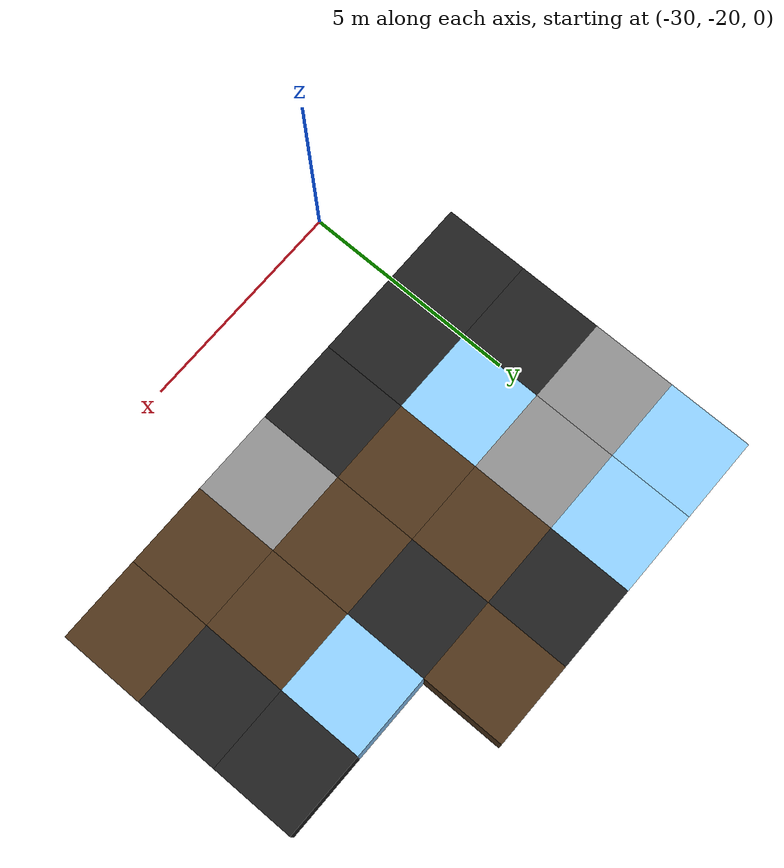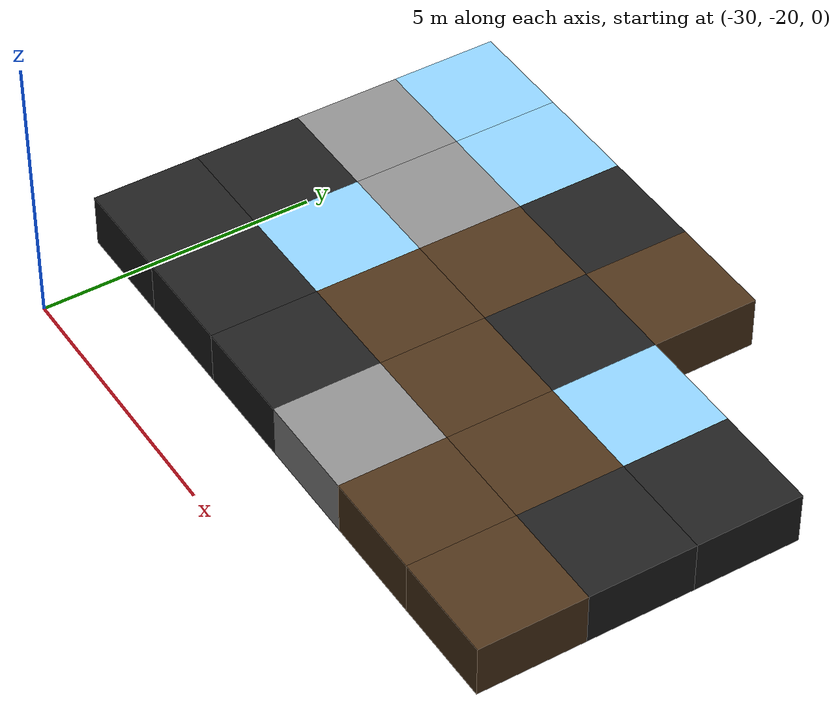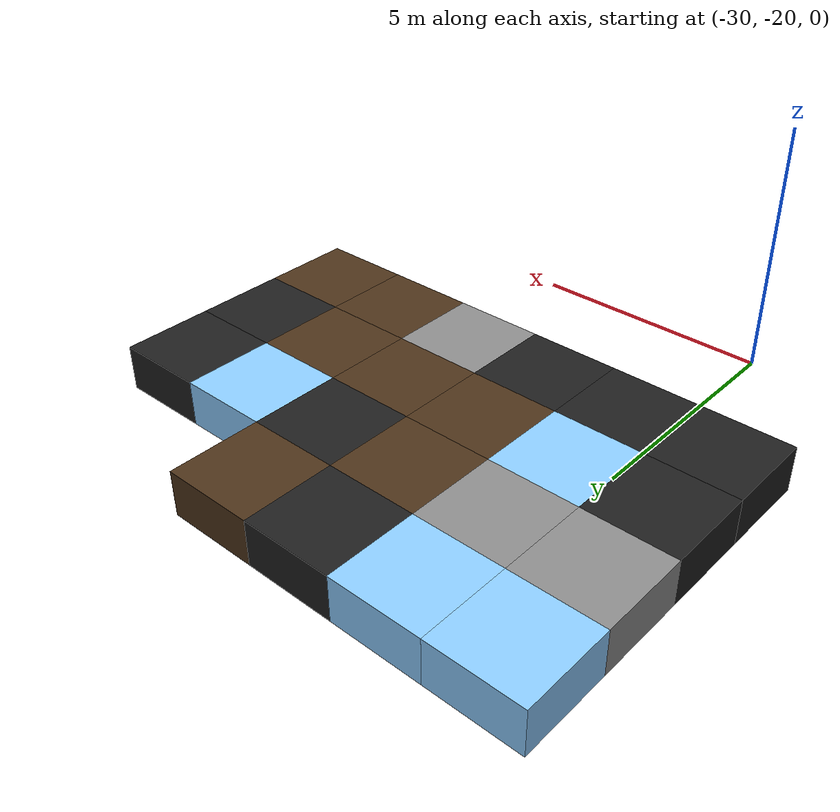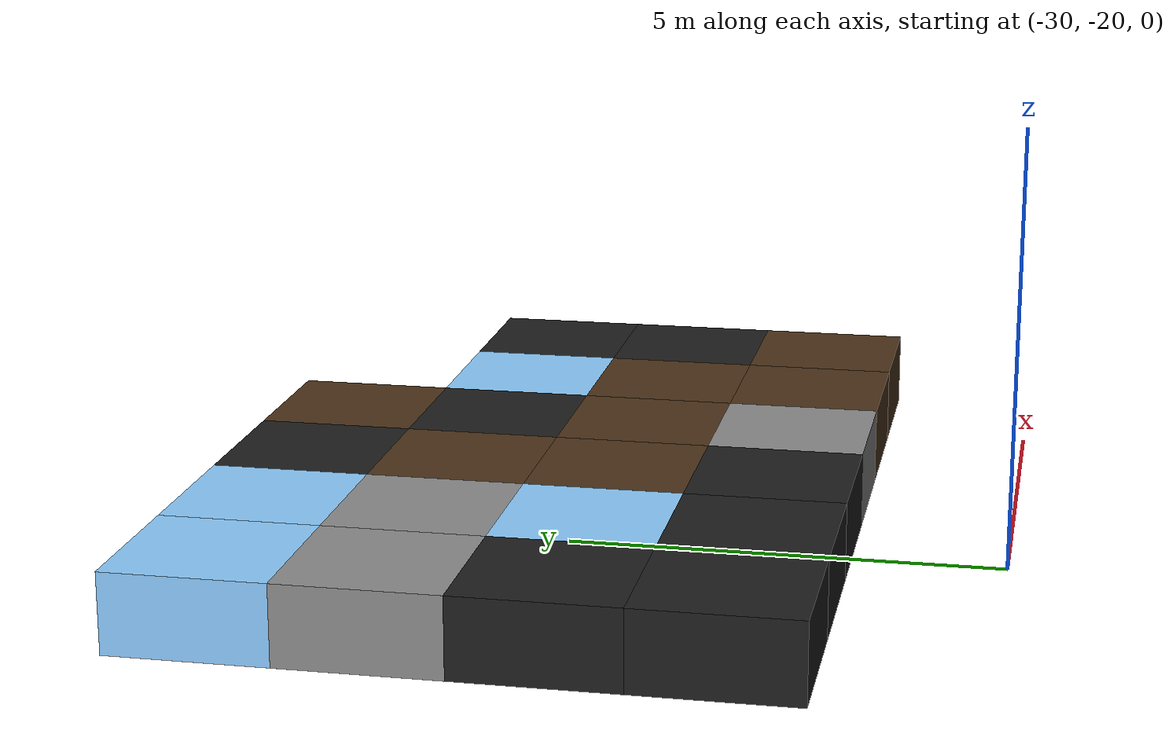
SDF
<sdf version="1.5">
 <world name="squares_example">
  <model name="tile_0_7">
   <static>true</static>
   <pose>-31.000 -17.000 -0.500 0 0 0</pose>
   <link name="link">
    <collision name="col">
     <geometry><box><size>2.0 2.0 1.0</size></box></geometry>
     <surface>
      <friction>
       <ode><mu>0.4</mu><mu2>0.15</mu2><fdir1>1 0 0</fdir1><slip1>0.0</slip1><slip2>0.0</slip2></ode>
       <torsional>
        <coefficient>0.03</coefficient>
        <use_patch_radius>false</use_patch_radius>
        <surface_radius>0.12</surface_radius>
        <ode><slip>0.0</slip></ode>
       </torsional>
      </friction>
      <bounce><restitution_coefficient>0.0</restitution_coefficient><threshold>0.1</threshold></bounce>
      <contact>
       <ode><kp>1000000000.0</kp><kd>1000000.0</kd><max_vel>0.01</max_vel><min_depth>0.0</min_depth></ode>
      </contact>
     </surface>
    </collision>
    <visual name="visual">
     <geometry><box><size>2.0 2.0 1.0</size></box></geometry>
     <material>
      <diffuse>0.12 0.12 0.12 1</diffuse>
      <ambient>0 0 0 0</ambient>
      <specular>0 0 0 1</specular>
      <emissive>0 0 0 1</emissive>
     </material>
    </visual>
   </link>
  </model>
  <model name="tile_1_7">
   <static>true</static>
   <pose>-29.000 -17.000 -0.500 0 0 0</pose>
   <link name="link">
    <collision name="col">
     <geometry><box><size>2.0 2.0 1.0</size></box></geometry>
     <surface>
      <friction>
       <ode><mu>0.4</mu><mu2>0.15</mu2><fdir1>1 0 0</fdir1><slip1>0.0</slip1><slip2>0.0</slip2></ode>
       <torsional>
        <coefficient>0.03</coefficient>
        <use_patch_radius>false</use_patch_radius>
        <surface_radius>0.12</surface_radius>
        <ode><slip>0.0</slip></ode>
       </torsional>
      </friction>
      <bounce><restitution_coefficient>0.0</restitution_coefficient><threshold>0.1</threshold></bounce>
      <contact>
       <ode><kp>1000000000.0</kp><kd>1000000.0</kd><max_vel>0.01</max_vel><min_depth>0.0</min_depth></ode>
      </contact>
     </surface>
    </collision>
    <visual name="visual">
     <geometry><box><size>2.0 2.0 1.0</size></box></geometry>
     <material>
      <diffuse>0.12 0.12 0.12 1</diffuse>
      <ambient>0 0 0 0</ambient>
      <specular>0 0 0 1</specular>
      <emissive>0 0 0 1</emissive>
     </material>
    </visual>
   </link>
  </model>
  <model name="tile_2_7">
   <static>true</static>
   <pose>-27.000 -17.000 -0.500 0 0 0</pose>
   <link name="link">
    <collision name="col">
     <geometry><box><size>2.0 2.0 1.0</size></box></geometry>
     <surface>
      <friction>
       <ode><mu>0.4</mu><mu2>0.15</mu2><fdir1>1 0 0</fdir1><slip1>0.0</slip1><slip2>0.0</slip2></ode>
       <torsional>
        <coefficient>0.03</coefficient>
        <use_patch_radius>false</use_patch_radius>
        <surface_radius>0.12</surface_radius>
        <ode><slip>0.0</slip></ode>
       </torsional>
      </friction>
      <bounce><restitution_coefficient>0.0</restitution_coefficient><threshold>0.1</threshold></bounce>
      <contact>
       <ode><kp>1000000000.0</kp><kd>1000000.0</kd><max_vel>0.01</max_vel><min_depth>0.0</min_depth></ode>
      </contact>
     </surface>
    </collision>
    <visual name="visual">
     <geometry><box><size>2.0 2.0 1.0</size></box></geometry>
     <material>
      <diffuse>0.12 0.12 0.12 1</diffuse>
      <ambient>0 0 0 0</ambient>
      <specular>0 0 0 1</specular>
      <emissive>0 0 0 1</emissive>
     </material>
    </visual>
   </link>
  </model>
  <model name="tile_3_7">
   <static>true</static>
   <pose>-25.000 -17.000 -0.500 0 0 0</pose>
   <link name="link">
    <collision name="col">
     <geometry><box><size>2.0 2.0 1.0</size></box></geometry>
     <surface>
      <friction>
       <ode><mu>0.8</mu><mu2>0.3</mu2><fdir1>1 0 0</fdir1><slip1>0.0</slip1><slip2>0.0</slip2></ode>
       <torsional>
        <coefficient>0.03</coefficient>
        <use_patch_radius>false</use_patch_radius>
        <surface_radius>0.12</surface_radius>
        <ode><slip>0.0</slip></ode>
       </torsional>
      </friction>
      <bounce><restitution_coefficient>0.0</restitution_coefficient><threshold>0.1</threshold></bounce>
      <contact>
       <ode><kp>10000000000.0</kp><kd>10000000.0</kd><max_vel>0.01</max_vel><min_depth>0.0</min_depth></ode>
      </contact>
     </surface>
    </collision>
    <visual name="visual">
     <geometry><box><size>2.0 2.0 1.0</size></box></geometry>
     <material>
      <diffuse>0.55 0.55 0.55 1</diffuse>
      <ambient>0 0 0 0</ambient>
      <specular>0 0 0 1</specular>
      <emissive>0 0 0 1</emissive>
     </material>
    </visual>
   </link>
  </model>
  <model name="tile_4_7">
   <static>true</static>
   <pose>-23.000 -17.000 -0.500 0 0 0</pose>
   <link name="link">
    <collision name="col">
     <geometry><box><size>2.0 2.0 1.0</size></box></geometry>
     <surface>
      <friction>
       <ode><mu>0.6</mu><mu2>0.4</mu2><fdir1>1 0 0</fdir1><slip1>0.08</slip1><slip2>0.08</slip2></ode>
       <torsional>
        <coefficient>0.03</coefficient>
        <use_patch_radius>false</use_patch_radius>
        <surface_radius>0.12</surface_radius>
        <ode><slip>0.0</slip></ode>
       </torsional>
      </friction>
      <bounce><restitution_coefficient>0.0</restitution_coefficient><threshold>0.1</threshold></bounce>
      <contact>
       <ode><kp>1000000.0</kp><kd>10000.0</kd><max_vel>0.01</max_vel><min_depth>0.0</min_depth></ode>
      </contact>
     </surface>
    </collision>
    <visual name="visual">
     <geometry><box><size>2.0 2.0 1.0</size></box></geometry>
     <material>
      <diffuse>0.30 0.20 0.10 1</diffuse>
      <ambient>0 0 0 0</ambient>
      <specular>0 0 0 1</specular>
      <emissive>0 0 0 1</emissive>
     </material>
    </visual>
   </link>
  </model>
  <model name="tile_5_7">
   <static>true</static>
   <pose>-21.000 -17.000 -0.500 0 0 0</pose>
   <link name="link">
    <collision name="col">
     <geometry><box><size>2.0 2.0 1.0</size></box></geometry>
     <surface>
      <friction>
       <ode><mu>0.6</mu><mu2>0.4</mu2><fdir1>1 0 0</fdir1><slip1>0.08</slip1><slip2>0.08</slip2></ode>
       <torsional>
        <coefficient>0.03</coefficient>
        <use_patch_radius>false</use_patch_radius>
        <surface_radius>0.12</surface_radius>
        <ode><slip>0.0</slip></ode>
       </torsional>
      </friction>
      <bounce><restitution_coefficient>0.0</restitution_coefficient><threshold>0.1</threshold></bounce>
      <contact>
       <ode><kp>1000000.0</kp><kd>10000.0</kd><max_vel>0.01</max_vel><min_depth>0.0</min_depth></ode>
      </contact>
     </surface>
    </collision>
    <visual name="visual">
     <geometry><box><size>2.0 2.0 1.0</size></box></geometry>
     <material>
      <diffuse>0.30 0.20 0.10 1</diffuse>
      <ambient>0 0 0 0</ambient>
      <specular>0 0 0 1</specular>
      <emissive>0 0 0 1</emissive>
     </material>
    </visual>
   </link>
  </model>
  <model name="tile_0_8">
   <static>true</static>
   <pose>-31.000 -15.000 -0.500 0 0 0</pose>
   <link name="link">
    <collision name="col">
     <geometry><box><size>2.0 2.0 1.0</size></box></geometry>
     <surface>
      <friction>
       <ode><mu>0.4</mu><mu2>0.15</mu2><fdir1>1 0 0</fdir1><slip1>0.0</slip1><slip2>0.0</slip2></ode>
       <torsional>
        <coefficient>0.03</coefficient>
        <use_patch_radius>false</use_patch_radius>
        <surface_radius>0.12</surface_radius>
        <ode><slip>0.0</slip></ode>
       </torsional>
      </friction>
      <bounce><restitution_coefficient>0.0</restitution_coefficient><threshold>0.1</threshold></bounce>
      <contact>
       <ode><kp>1000000000.0</kp><kd>1000000.0</kd><max_vel>0.01</max_vel><min_depth>0.0</min_depth></ode>
      </contact>
     </surface>
    </collision>
    <visual name="visual">
     <geometry><box><size>2.0 2.0 1.0</size></box></geometry>
     <material>
      <diffuse>0.12 0.12 0.12 1</diffuse>
      <ambient>0 0 0 0</ambient>
      <specular>0 0 0 1</specular>
      <emissive>0 0 0 1</emissive>
     </material>
    </visual>
   </link>
  </model>
  <model name="tile_1_8">
   <static>true</static>
   <pose>-29.000 -15.000 -0.500 0 0 0</pose>
   <link name="link">
    <collision name="col">
     <geometry><box><size>2.0 2.0 1.0</size></box></geometry>
     <surface>
      <friction>
       <ode><mu>0.03</mu><mu2>0.02</mu2><fdir1>1 0 0</fdir1><slip1>0.03</slip1><slip2>0.03</slip2></ode>
       <torsional>
        <coefficient>0.005</coefficient>
        <use_patch_radius>false</use_patch_radius>
        <surface_radius>0.12</surface_radius>
        <ode><slip>0.01</slip></ode>
       </torsional>
      </friction>
      <bounce><restitution_coefficient>0.0</restitution_coefficient><threshold>0.1</threshold></bounce>
      <contact>
       <ode><kp>10000000.0</kp><kd>1000.0</kd><max_vel>0.01</max_vel><min_depth>0.0</min_depth></ode>
      </contact>
     </surface>
    </collision>
    <visual name="visual">
     <geometry><box><size>2.0 2.0 1.0</size></box></geometry>
     <material>
      <diffuse>0.55 0.80 1.00 1</diffuse>
      <ambient>0 0 0 0</ambient>
      <specular>0 0 0 1</specular>
      <emissive>0 0 0 1</emissive>
     </material>
    </visual>
   </link>
  </model>
  <model name="tile_2_8">
   <static>true</static>
   <pose>-27.000 -15.000 -0.500 0 0 0</pose>
   <link name="link">
    <collision name="col">
     <geometry><box><size>2.0 2.0 1.0</size></box></geometry>
     <surface>
      <friction>
       <ode><mu>0.6</mu><mu2>0.4</mu2><fdir1>1 0 0</fdir1><slip1>0.08</slip1><slip2>0.08</slip2></ode>
       <torsional>
        <coefficient>0.03</coefficient>
        <use_patch_radius>false</use_patch_radius>
        <surface_radius>0.12</surface_radius>
        <ode><slip>0.0</slip></ode>
       </torsional>
      </friction>
      <bounce><restitution_coefficient>0.0</restitution_coefficient><threshold>0.1</threshold></bounce>
      <contact>
       <ode><kp>1000000.0</kp><kd>10000.0</kd><max_vel>0.01</max_vel><min_depth>0.0</min_depth></ode>
      </contact>
     </surface>
    </collision>
    <visual name="visual">
     <geometry><box><size>2.0 2.0 1.0</size></box></geometry>
     <material>
      <diffuse>0.30 0.20 0.10 1</diffuse>
      <ambient>0 0 0 0</ambient>
      <specular>0 0 0 1</specular>
      <emissive>0 0 0 1</emissive>
     </material>
    </visual>
   </link>
  </model>
  <model name="tile_3_8">
   <static>true</static>
   <pose>-25.000 -15.000 -0.500 0 0 0</pose>
   <link name="link">
    <collision name="col">
     <geometry><box><size>2.0 2.0 1.0</size></box></geometry>
     <surface>
      <friction>
       <ode><mu>0.6</mu><mu2>0.4</mu2><fdir1>1 0 0</fdir1><slip1>0.08</slip1><slip2>0.08</slip2></ode>
       <torsional>
        <coefficient>0.03</coefficient>
        <use_patch_radius>false</use_patch_radius>
        <surface_radius>0.12</surface_radius>
        <ode><slip>0.0</slip></ode>
       </torsional>
      </friction>
      <bounce><restitution_coefficient>0.0</restitution_coefficient><threshold>0.1</threshold></bounce>
      <contact>
       <ode><kp>1000000.0</kp><kd>10000.0</kd><max_vel>0.01</max_vel><min_depth>0.0</min_depth></ode>
      </contact>
     </surface>
    </collision>
    <visual name="visual">
     <geometry><box><size>2.0 2.0 1.0</size></box></geometry>
     <material>
      <diffuse>0.30 0.20 0.10 1</diffuse>
      <ambient>0 0 0 0</ambient>
      <specular>0 0 0 1</specular>
      <emissive>0 0 0 1</emissive>
     </material>
    </visual>
   </link>
  </model>
  <model name="tile_4_8">
   <static>true</static>
   <pose>-23.000 -15.000 -0.500 0 0 0</pose>
   <link name="link">
    <collision name="col">
     <geometry><box><size>2.0 2.0 1.0</size></box></geometry>
     <surface>
      <friction>
       <ode><mu>0.6</mu><mu2>0.4</mu2><fdir1>1 0 0</fdir1><slip1>0.08</slip1><slip2>0.08</slip2></ode>
       <torsional>
        <coefficient>0.03</coefficient>
        <use_patch_radius>false</use_patch_radius>
        <surface_radius>0.12</surface_radius>
        <ode><slip>0.0</slip></ode>
       </torsional>
      </friction>
      <bounce><restitution_coefficient>0.0</restitution_coefficient><threshold>0.1</threshold></bounce>
      <contact>
       <ode><kp>1000000.0</kp><kd>10000.0</kd><max_vel>0.01</max_vel><min_depth>0.0</min_depth></ode>
      </contact>
     </surface>
    </collision>
    <visual name="visual">
     <geometry><box><size>2.0 2.0 1.0</size></box></geometry>
     <material>
      <diffuse>0.30 0.20 0.10 1</diffuse>
      <ambient>0 0 0 0</ambient>
      <specular>0 0 0 1</specular>
      <emissive>0 0 0 1</emissive>
     </material>
    </visual>
   </link>
  </model>
  <model name="tile_5_8">
   <static>true</static>
   <pose>-21.000 -15.000 -0.500 0 0 0</pose>
   <link name="link">
    <collision name="col">
     <geometry><box><size>2.0 2.0 1.0</size></box></geometry>
     <surface>
      <friction>
       <ode><mu>0.4</mu><mu2>0.15</mu2><fdir1>1 0 0</fdir1><slip1>0.0</slip1><slip2>0.0</slip2></ode>
       <torsional>
        <coefficient>0.03</coefficient>
        <use_patch_radius>false</use_patch_radius>
        <surface_radius>0.12</surface_radius>
        <ode><slip>0.0</slip></ode>
       </torsional>
      </friction>
      <bounce><restitution_coefficient>0.0</restitution_coefficient><threshold>0.1</threshold></bounce>
      <contact>
       <ode><kp>1000000000.0</kp><kd>1000000.0</kd><max_vel>0.01</max_vel><min_depth>0.0</min_depth></ode>
      </contact>
     </surface>
    </collision>
    <visual name="visual">
     <geometry><box><size>2.0 2.0 1.0</size></box></geometry>
     <material>
      <diffuse>0.12 0.12 0.12 1</diffuse>
      <ambient>0 0 0 0</ambient>
      <specular>0 0 0 1</specular>
      <emissive>0 0 0 1</emissive>
     </material>
    </visual>
   </link>
  </model>
  <model name="tile_0_9">
   <static>true</static>
   <pose>-31.000 -13.000 -0.500 0 0 0</pose>
   <link name="link">
    <collision name="col">
     <geometry><box><size>2.0 2.0 1.0</size></box></geometry>
     <surface>
      <friction>
       <ode><mu>0.8</mu><mu2>0.3</mu2><fdir1>1 0 0</fdir1><slip1>0.0</slip1><slip2>0.0</slip2></ode>
       <torsional>
        <coefficient>0.03</coefficient>
        <use_patch_radius>false</use_patch_radius>
        <surface_radius>0.12</surface_radius>
        <ode><slip>0.0</slip></ode>
       </torsional>
      </friction>
      <bounce><restitution_coefficient>0.0</restitution_coefficient><threshold>0.1</threshold></bounce>
      <contact>
       <ode><kp>10000000000.0</kp><kd>10000000.0</kd><max_vel>0.01</max_vel><min_depth>0.0</min_depth></ode>
      </contact>
     </surface>
    </collision>
    <visual name="visual">
     <geometry><box><size>2.0 2.0 1.0</size></box></geometry>
     <material>
      <diffuse>0.55 0.55 0.55 1</diffuse>
      <ambient>0 0 0 0</ambient>
      <specular>0 0 0 1</specular>
      <emissive>0 0 0 1</emissive>
     </material>
    </visual>
   </link>
  </model>
  <model name="tile_1_9">
   <static>true</static>
   <pose>-29.000 -13.000 -0.500 0 0 0</pose>
   <link name="link">
    <collision name="col">
     <geometry><box><size>2.0 2.0 1.0</size></box></geometry>
     <surface>
      <friction>
       <ode><mu>0.8</mu><mu2>0.3</mu2><fdir1>1 0 0</fdir1><slip1>0.0</slip1><slip2>0.0</slip2></ode>
       <torsional>
        <coefficient>0.03</coefficient>
        <use_patch_radius>false</use_patch_radius>
        <surface_radius>0.12</surface_radius>
        <ode><slip>0.0</slip></ode>
       </torsional>
      </friction>
      <bounce><restitution_coefficient>0.0</restitution_coefficient><threshold>0.1</threshold></bounce>
      <contact>
       <ode><kp>10000000000.0</kp><kd>10000000.0</kd><max_vel>0.01</max_vel><min_depth>0.0</min_depth></ode>
      </contact>
     </surface>
    </collision>
    <visual name="visual">
     <geometry><box><size>2.0 2.0 1.0</size></box></geometry>
     <material>
      <diffuse>0.55 0.55 0.55 1</diffuse>
      <ambient>0 0 0 0</ambient>
      <specular>0 0 0 1</specular>
      <emissive>0 0 0 1</emissive>
     </material>
    </visual>
   </link>
  </model>
  <model name="tile_2_9">
   <static>true</static>
   <pose>-27.000 -13.000 -0.500 0 0 0</pose>
   <link name="link">
    <collision name="col">
     <geometry><box><size>2.0 2.0 1.0</size></box></geometry>
     <surface>
      <friction>
       <ode><mu>0.6</mu><mu2>0.4</mu2><fdir1>1 0 0</fdir1><slip1>0.08</slip1><slip2>0.08</slip2></ode>
       <torsional>
        <coefficient>0.03</coefficient>
        <use_patch_radius>false</use_patch_radius>
        <surface_radius>0.12</surface_radius>
        <ode><slip>0.0</slip></ode>
       </torsional>
      </friction>
      <bounce><restitution_coefficient>0.0</restitution_coefficient><threshold>0.1</threshold></bounce>
      <contact>
       <ode><kp>1000000.0</kp><kd>10000.0</kd><max_vel>0.01</max_vel><min_depth>0.0</min_depth></ode>
      </contact>
     </surface>
    </collision>
    <visual name="visual">
     <geometry><box><size>2.0 2.0 1.0</size></box></geometry>
     <material>
      <diffuse>0.30 0.20 0.10 1</diffuse>
      <ambient>0 0 0 0</ambient>
      <specular>0 0 0 1</specular>
      <emissive>0 0 0 1</emissive>
     </material>
    </visual>
   </link>
  </model>
  <model name="tile_3_9">
   <static>true</static>
   <pose>-25.000 -13.000 -0.500 0 0 0</pose>
   <link name="link">
    <collision name="col">
     <geometry><box><size>2.0 2.0 1.0</size></box></geometry>
     <surface>
      <friction>
       <ode><mu>0.4</mu><mu2>0.15</mu2><fdir1>1 0 0</fdir1><slip1>0.0</slip1><slip2>0.0</slip2></ode>
       <torsional>
        <coefficient>0.03</coefficient>
        <use_patch_radius>false</use_patch_radius>
        <surface_radius>0.12</surface_radius>
        <ode><slip>0.0</slip></ode>
       </torsional>
      </friction>
      <bounce><restitution_coefficient>0.0</restitution_coefficient><threshold>0.1</threshold></bounce>
      <contact>
       <ode><kp>1000000000.0</kp><kd>1000000.0</kd><max_vel>0.01</max_vel><min_depth>0.0</min_depth></ode>
      </contact>
     </surface>
    </collision>
    <visual name="visual">
     <geometry><box><size>2.0 2.0 1.0</size></box></geometry>
     <material>
      <diffuse>0.12 0.12 0.12 1</diffuse>
      <ambient>0 0 0 0</ambient>
      <specular>0 0 0 1</specular>
      <emissive>0 0 0 1</emissive>
     </material>
    </visual>
   </link>
  </model>
  <model name="tile_4_9">
   <static>true</static>
   <pose>-23.000 -13.000 -0.500 0 0 0</pose>
   <link name="link">
    <collision name="col">
     <geometry><box><size>2.0 2.0 1.0</size></box></geometry>
     <surface>
      <friction>
       <ode><mu>0.03</mu><mu2>0.02</mu2><fdir1>1 0 0</fdir1><slip1>0.03</slip1><slip2>0.03</slip2></ode>
       <torsional>
        <coefficient>0.005</coefficient>
        <use_patch_radius>false</use_patch_radius>
        <surface_radius>0.12</surface_radius>
        <ode><slip>0.01</slip></ode>
       </torsional>
      </friction>
      <bounce><restitution_coefficient>0.0</restitution_coefficient><threshold>0.1</threshold></bounce>
      <contact>
       <ode><kp>10000000.0</kp><kd>1000.0</kd><max_vel>0.01</max_vel><min_depth>0.0</min_depth></ode>
      </contact>
     </surface>
    </collision>
    <visual name="visual">
     <geometry><box><size>2.0 2.0 1.0</size></box></geometry>
     <material>
      <diffuse>0.55 0.80 1.00 1</diffuse>
      <ambient>0 0 0 0</ambient>
      <specular>0 0 0 1</specular>
      <emissive>0 0 0 1</emissive>
     </material>
    </visual>
   </link>
  </model>
  <model name="tile_5_9">
   <static>true</static>
   <pose>-21.000 -13.000 -0.500 0 0 0</pose>
   <link name="link">
    <collision name="col">
     <geometry><box><size>2.0 2.0 1.0</size></box></geometry>
     <surface>
      <friction>
       <ode><mu>0.4</mu><mu2>0.15</mu2><fdir1>1 0 0</fdir1><slip1>0.0</slip1><slip2>0.0</slip2></ode>
       <torsional>
        <coefficient>0.03</coefficient>
        <use_patch_radius>false</use_patch_radius>
        <surface_radius>0.12</surface_radius>
        <ode><slip>0.0</slip></ode>
       </torsional>
      </friction>
      <bounce><restitution_coefficient>0.0</restitution_coefficient><threshold>0.1</threshold></bounce>
      <contact>
       <ode><kp>1000000000.0</kp><kd>1000000.0</kd><max_vel>0.01</max_vel><min_depth>0.0</min_depth></ode>
      </contact>
     </surface>
    </collision>
    <visual name="visual">
     <geometry><box><size>2.0 2.0 1.0</size></box></geometry>
     <material>
      <diffuse>0.12 0.12 0.12 1</diffuse>
      <ambient>0 0 0 0</ambient>
      <specular>0 0 0 1</specular>
      <emissive>0 0 0 1</emissive>
     </material>
    </visual>
   </link>
  </model>
  <model name="tile_0_10">
   <static>true</static>
   <pose>-31.000 -11.000 -0.500 0 0 0</pose>
   <link name="link">
    <collision name="col">
     <geometry><box><size>2.0 2.0 1.0</size></box></geometry>
     <surface>
      <friction>
       <ode><mu>0.03</mu><mu2>0.02</mu2><fdir1>1 0 0</fdir1><slip1>0.03</slip1><slip2>0.03</slip2></ode>
       <torsional>
        <coefficient>0.005</coefficient>
        <use_patch_radius>false</use_patch_radius>
        <surface_radius>0.12</surface_radius>
        <ode><slip>0.01</slip></ode>
       </torsional>
      </friction>
      <bounce><restitution_coefficient>0.0</restitution_coefficient><threshold>0.1</threshold></bounce>
      <contact>
       <ode><kp>10000000.0</kp><kd>1000.0</kd><max_vel>0.01</max_vel><min_depth>0.0</min_depth></ode>
      </contact>
     </surface>
    </collision>
    <visual name="visual">
     <geometry><box><size>2.0 2.0 1.0</size></box></geometry>
     <material>
      <diffuse>0.55 0.80 1.00 1</diffuse>
      <ambient>0 0 0 0</ambient>
      <specular>0 0 0 1</specular>
      <emissive>0 0 0 1</emissive>
     </material>
    </visual>
   </link>
  </model>
  <model name="tile_1_10">
   <static>true</static>
   <pose>-29.000 -11.000 -0.500 0 0 0</pose>
   <link name="link">
    <collision name="col">
     <geometry><box><size>2.0 2.0 1.0</size></box></geometry>
     <surface>
      <friction>
       <ode><mu>0.03</mu><mu2>0.02</mu2><fdir1>1 0 0</fdir1><slip1>0.03</slip1><slip2>0.03</slip2></ode>
       <torsional>
        <coefficient>0.005</coefficient>
        <use_patch_radius>false</use_patch_radius>
        <surface_radius>0.12</surface_radius>
        <ode><slip>0.01</slip></ode>
       </torsional>
      </friction>
      <bounce><restitution_coefficient>0.0</restitution_coefficient><threshold>0.1</threshold></bounce>
      <contact>
       <ode><kp>10000000.0</kp><kd>1000.0</kd><max_vel>0.01</max_vel><min_depth>0.0</min_depth></ode>
      </contact>
     </surface>
    </collision>
    <visual name="visual">
     <geometry><box><size>2.0 2.0 1.0</size></box></geometry>
     <material>
      <diffuse>0.55 0.80 1.00 1</diffuse>
      <ambient>0 0 0 0</ambient>
      <specular>0 0 0 1</specular>
      <emissive>0 0 0 1</emissive>
     </material>
    </visual>
   </link>
  </model>
  <model name="tile_2_10">
   <static>true</static>
   <pose>-27.000 -11.000 -0.500 0 0 0</pose>
   <link name="link">
    <collision name="col">
     <geometry><box><size>2.0 2.0 1.0</size></box></geometry>
     <surface>
      <friction>
       <ode><mu>0.4</mu><mu2>0.15</mu2><fdir1>1 0 0</fdir1><slip1>0.0</slip1><slip2>0.0</slip2></ode>
       <torsional>
        <coefficient>0.03</coefficient>
        <use_patch_radius>false</use_patch_radius>
        <surface_radius>0.12</surface_radius>
        <ode><slip>0.0</slip></ode>
       </torsional>
      </friction>
      <bounce><restitution_coefficient>0.0</restitution_coefficient><threshold>0.1</threshold></bounce>
      <contact>
       <ode><kp>1000000000.0</kp><kd>1000000.0</kd><max_vel>0.01</max_vel><min_depth>0.0</min_depth></ode>
      </contact>
     </surface>
    </collision>
    <visual name="visual">
     <geometry><box><size>2.0 2.0 1.0</size></box></geometry>
     <material>
      <diffuse>0.12 0.12 0.12 1</diffuse>
      <ambient>0 0 0 0</ambient>
      <specular>0 0 0 1</specular>
      <emissive>0 0 0 1</emissive>
     </material>
    </visual>
   </link>
  </model>
  <model name="tile_3_10">
   <static>true</static>
   <pose>-25.000 -11.000 -0.500 0 0 0</pose>
   <link name="link">
    <collision name="col">
     <geometry><box><size>2.0 2.0 1.0</size></box></geometry>
     <surface>
      <friction>
       <ode><mu>0.6</mu><mu2>0.4</mu2><fdir1>1 0 0</fdir1><slip1>0.08</slip1><slip2>0.08</slip2></ode>
       <torsional>
        <coefficient>0.03</coefficient>
        <use_patch_radius>false</use_patch_radius>
        <surface_radius>0.12</surface_radius>
        <ode><slip>0.0</slip></ode>
       </torsional>
      </friction>
      <bounce><restitution_coefficient>0.0</restitution_coefficient><threshold>0.1</threshold></bounce>
      <contact>
       <ode><kp>1000000.0</kp><kd>10000.0</kd><max_vel>0.01</max_vel><min_depth>0.0</min_depth></ode>
      </contact>
     </surface>
    </collision>
    <visual name="visual">
     <geometry><box><size>2.0 2.0 1.0</size></box></geometry>
     <material>
      <diffuse>0.30 0.20 0.10 1</diffuse>
      <ambient>0 0 0 0</ambient>
      <specular>0 0 0 1</specular>
      <emissive>0 0 0 1</emissive>
     </material>
    </visual>
   </link>
  </model>
 </world>
</sdf>
